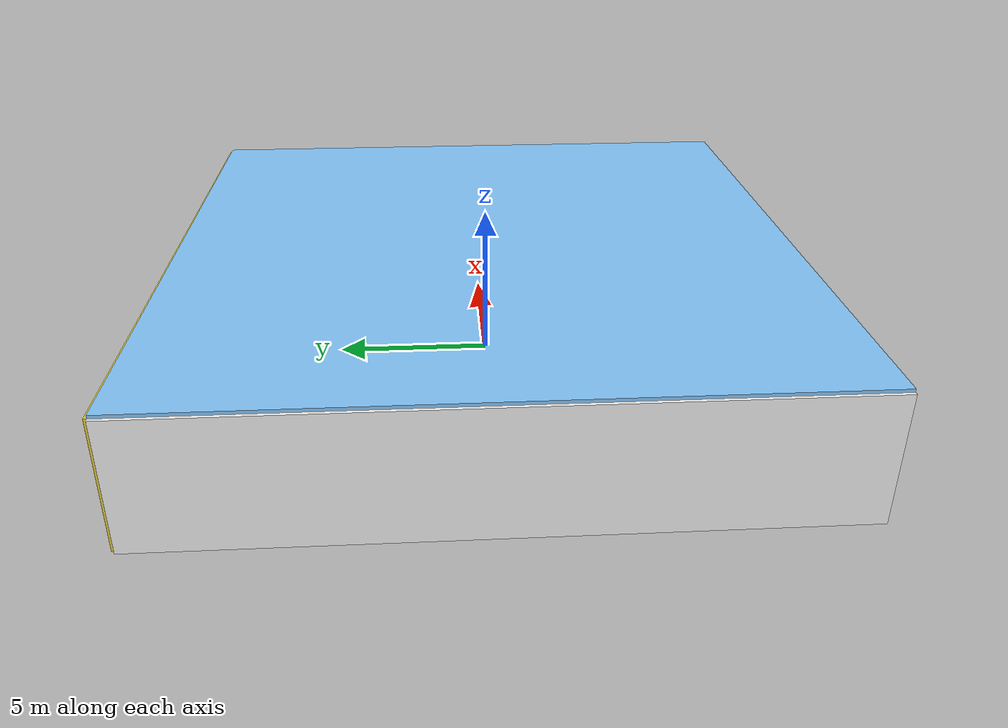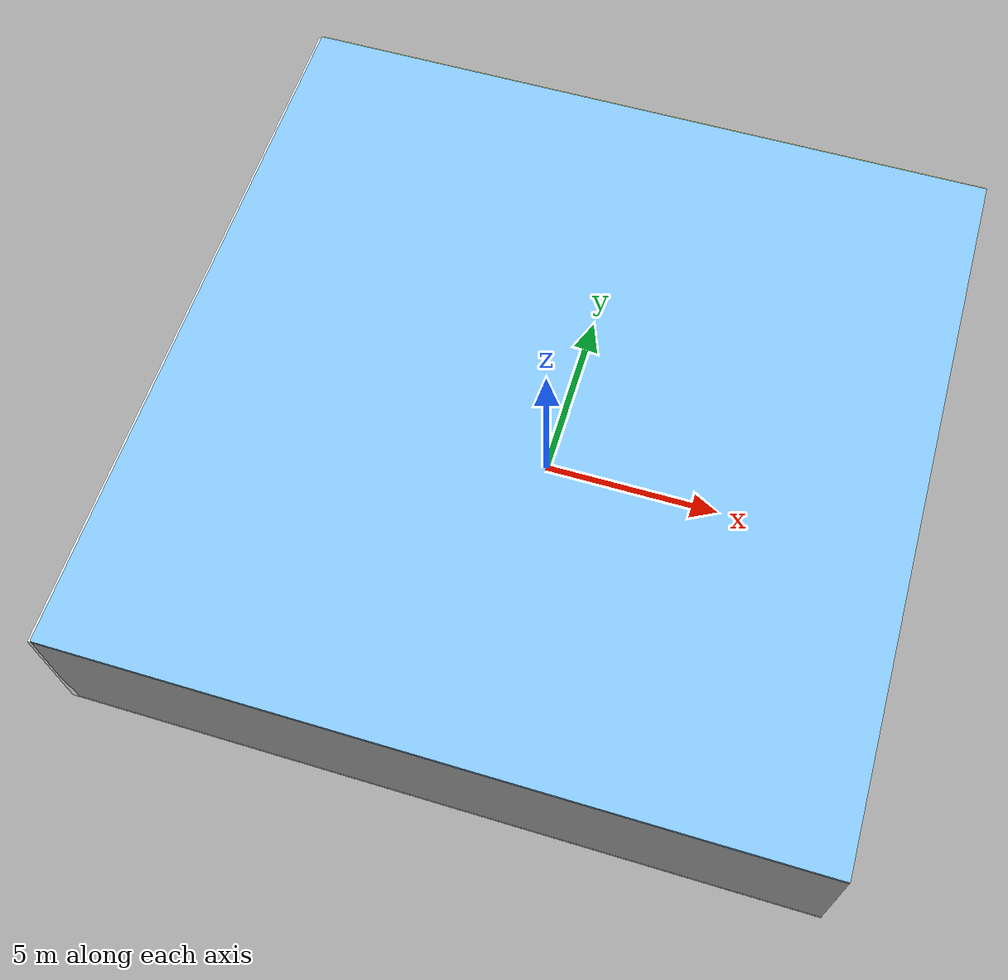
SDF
<sdf version="1.4">
 <world name="default">
  <physics type="ode">
   <max_step_size>0.001</max_step_size>
   <real_time_factor>1</real_time_factor>
   <real_time_update_rate>1000</real_time_update_rate>
   <gravity>0 0 -9.8</gravity>
  </physics>
  <scene><ambient>0.4 0.4 0.4 1</ambient><background>0.7 0.7 0.7 1</background><shadows>1</shadows></scene>
  <model name="Surrounding">
   <static>1</static>
   <link name="Ceiling">
    <collision name="Ceiling_Collision"><geometry><box><size>20 20 0.1</size></box></geometry></collision>
    <visual name="Ceiling_Visual">
     <geometry><box><size>20 20 0.1</size></box></geometry>
     <material>
      <script><uri>file://media/materials/scripts/gazebo.material</uri><name>Gazebo/SkyBlue</name></script>
     </material>
    </visual>
    <pose>0 0 4.05 0 0 0</pose>
   </link>
   <link name="Wall_South">
    <collision name="Wall_South_Collision">
     <geometry><box><size>20 0 4</size></box></geometry>
     <pose>0 0 2 0 -0 0</pose>
    </collision>
    <visual name="Wall_South_Visual">
     <pose>0 0 2 0 -0 0</pose>
     <geometry><box><size>20 0 4</size></box></geometry>
     <material>
      <script><uri>file://media/materials/scripts/gazebo.material</uri><name>Gazebo/GreyGradientSky</name></script>
     </material>
    </visual>
    <velocity_decay><linear>0</linear><angular>0</angular></velocity_decay>
    <pose>0 -10 0 0 -0 0</pose>
   </link>
   <link name="Wall_East">
    <collision name="Wall_21_Collision">
     <geometry><box><size>20 0 4</size></box></geometry>
     <pose>0 0 2 0 -0 0</pose>
    </collision>
    <visual name="Wall_21_Visual">
     <pose>0 0 2 0 -0 0</pose>
     <geometry><box><size>20 0 4</size></box></geometry>
     <material>
      <script><uri>file://media/materials/scripts/gazebo.material</uri><name>Gazebo/Turquoise</name></script>
     </material>
    </visual>
    <velocity_decay><linear>0</linear><angular>0</angular></velocity_decay>
    <pose>10 0 0 0 -0 1.5708</pose>
   </link>
   <link name="Wall_North">
    <collision name="Wall_22_Collision">
     <geometry><box><size>20 0.2 4</size></box></geometry>
     <pose>0 0 2 0 -0 0</pose>
    </collision>
    <visual name="Wall_22_Visual">
     <pose>0 0 2 0 -0 0</pose>
     <geometry><box><size>20 0.2 4</size></box></geometry>
     <material>
      <script><uri>file://media/materials/scripts/gazebo.material</uri><name>Gazebo/ZincYellow</name></script>
     </material>
    </visual>
    <velocity_decay><linear>0</linear><angular>0</angular></velocity_decay>
    <pose>0 10 0 0 -0 0</pose>
   </link>
   <link name="Wall_West">
    <collision name="Wall_23_Collision">
     <geometry><box><size>20 0.2 4</size></box></geometry>
     <pose>0 0 2 0 -0 0</pose>
    </collision>
    <visual name="Wall_23_Visual">
     <pose>0 0 2 0 -0 0</pose>
     <geometry><box><size>20 0.2 4</size></box></geometry>
     <material>
      <script><uri>file://media/materials/scripts/gazebo.material</uri><name>Gazebo/White</name></script>
     </material>
    </visual>
    <velocity_decay><linear>0</linear><angular>0</angular></velocity_decay>
    <pose>-10 0 0 0 0 -1.5708</pose>
   </link>
   <link name="Ground_link">
    <collision name="collision">
     <pose>0 0 .05 0 -0 0</pose>
     <geometry><box><size>20 20 0.1</size></box></geometry>
    </collision>
    <visual name="visual">
     <pose>0 0 .05 0 -0 0</pose>
     <geometry><box><size>20 20 0.1</size></box></geometry>
     <material>
      <script><uri>file://media/materials/scripts/gazebo.material</uri><name>Gazebo/WhiteGlow</name></script>
     </material>
    </visual>
   </link>
   <static>1</static>
  </model>
  <spherical_coordinates>
   <surface_model>EARTH_WGS84</surface_model>
   <latitude_deg>0</latitude_deg>
   <longitude_deg>0</longitude_deg>
   <elevation>0</elevation>
   <heading_deg>0</heading_deg>
  </spherical_coordinates>
  <light name="lightball_0" type="diffuse">
   <diffuse>0.8 0.8 0.8 1</diffuse>
   <specular>0.2 0.2 0.2 1</specular>
   <attenuation>
    <range>100</range>
    <constant>0.7</constant>
    <linear>0.01</linear>
    <quadratic>0.001</quadratic>
   </attenuation>
   <direction>-0.5 0.1 -0.9</direction>
   <pose>-9.69954041691 -9.40473734438 2.57216408465 0 0 0</pose>
  </light>
  <light name="lightball_1" type="diffuse">
   <diffuse>0.8 0.8 0.8 1</diffuse>
   <specular>0.2 0.2 0.2 1</specular>
   <attenuation>
    <range>100</range>
    <constant>0.7</constant>
    <linear>0.01</linear>
    <quadratic>0.001</quadratic>
   </attenuation>
   <direction>-0.5 0.1 -0.9</direction>
   <pose>-0.637278108923 -3.29912465707 2.92275192414 0 0 0</pose>
  </light>
  <light name="lightball_2" type="diffuse">
   <diffuse>0.8 0.8 0.8 1</diffuse>
   <specular>0.2 0.2 0.2 1</specular>
   <attenuation>
    <range>100</range>
    <constant>0.7</constant>
    <linear>0.01</linear>
    <quadratic>0.001</quadratic>
   </attenuation>
   <direction>-0.5 0.1 -0.9</direction>
   <pose>6.89204673585 3.50550910283 1.23272825583 0 0 0</pose>
  </light>
  <light name="lightball_3" type="diffuse">
   <diffuse>0.8 0.8 0.8 1</diffuse>
   <specular>0.2 0.2 0.2 1</specular>
   <attenuation>
    <range>100</range>
    <constant>0.7</constant>
    <linear>0.01</linear>
    <quadratic>0.001</quadratic>
   </attenuation>
   <direction>-0.5 0.1 -0.9</direction>
   <pose>0.329628269876 -5.38820817083 2.19499011131 0 0 0</pose>
  </light>
  <light name="lightball_4" type="diffuse">
   <diffuse>0.8 0.8 0.8 1</diffuse>
   <specular>0.2 0.2 0.2 1</specular>
   <attenuation>
    <range>100</range>
    <constant>0.7</constant>
    <linear>0.01</linear>
    <quadratic>0.001</quadratic>
   </attenuation>
   <direction>-0.5 0.1 -0.9</direction>
   <pose>-8.27404282922 -6.79329278343 1.40824259943 0 0 0</pose>
  </light>
  <light name="lightball_5" type="diffuse">
   <diffuse>0.8 0.8 0.8 1</diffuse>
   <specular>0.2 0.2 0.2 1</specular>
   <attenuation>
    <range>100</range>
    <constant>0.7</constant>
    <linear>0.01</linear>
    <quadratic>0.001</quadratic>
   </attenuation>
   <direction>-0.5 0.1 -0.9</direction>
   <pose>-7.45052728724 5.86446448029 3.39700142755 0 0 0</pose>
  </light>
  <light name="lightball_6" type="diffuse">
   <diffuse>0.8 0.8 0.8 1</diffuse>
   <specular>0.2 0.2 0.2 1</specular>
   <attenuation>
    <range>100</range>
    <constant>0.7</constant>
    <linear>0.01</linear>
    <quadratic>0.001</quadratic>
   </attenuation>
   <direction>-0.5 0.1 -0.9</direction>
   <pose>1.77622080735 -6.68885625601 2.2005071771 0 0 0</pose>
  </light>
  <light name="lightball_7" type="diffuse">
   <diffuse>0.8 0.8 0.8 1</diffuse>
   <specular>0.2 0.2 0.2 1</specular>
   <attenuation>
    <range>100</range>
    <constant>0.7</constant>
    <linear>0.01</linear>
    <quadratic>0.001</quadratic>
   </attenuation>
   <direction>-0.5 0.1 -0.9</direction>
   <pose>-3.45788216455 5.86875371556 2.90244223869 0 0 0</pose>
  </light>
  <include><uri>model://table</uri><pose>-1.16361100236 -4.44438254426 0 0 0 0.942515195819</pose></include>
  <include>
   <uri>model://construction_cone</uri>
   <pose>-1.68535417268 3.62820766003 0 0 0 0.596285513847</pose>
  </include>
 </world>
</sdf>

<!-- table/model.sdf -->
<sdf version="1.5">
  <model name="table">
    <static>true</static>
    <link name="link">
      <collision name="surface">
        <pose>0 0 1.0 0 0 0</pose>
        <geometry>
          <box>
            <size>1.5 0.8 0.03</size>
          </box>
        </geometry>
        <surface>
          <friction>
            <ode>
              <mu>0.6</mu>
              <mu2>0.6</mu2>
            </ode>
          </friction>
        </surface>
      </collision>
      <visual name="visual1">
        <pose>0 0 1.0 0 0 0</pose>
        <geometry>
          <box>
            <size>1.5 0.8 0.03</size>
          </box>
        </geometry>
        <material>
          <script>
            <uri>model://media/materials/scripts/gazebo.material</uri>
            <name>Gazebo/Wood</name>
          </script>
        </material>
      </visual>
      <collision name="front_left_leg">
        <pose>0.68 0.38 0.5 0 0 0</pose>
        <geometry>
          <cylinder>
            <radius>0.02</radius>
            <length>1.0</length>
          </cylinder>
        </geometry>
      </collision>
      <visual name="front_left_leg">
        <pose>0.68 0.38 0.5 0 0 0</pose>
        <geometry>
          <cylinder>
            <radius>0.02</radius>
            <length>1.0</length>
          </cylinder>
        </geometry>
        <material>
          <script>
            <uri>model://media/materials/scripts/gazebo.material</uri>
            <name>Gazebo/Grey</name>
          </script>
        </material>
      </visual>
      <collision name="front_right_leg">
        <pose>0.68 -0.38 0.5 0 0 0</pose>
        <geometry>
          <cylinder>
            <radius>0.02</radius>
            <length>1.0</length>
          </cylinder>
        </geometry>
      </collision>
      <visual name="front_right_leg">
        <pose>0.68 -0.38 0.5 0 0 0</pose>
        <geometry>
          <cylinder>
            <radius>0.02</radius>
            <length>1.0</length>
          </cylinder>
        </geometry>
        <material>
          <script>
            <uri>model://media/materials/scripts/gazebo.material</uri>
            <name>Gazebo/Grey</name>
          </script>
        </material>
      </visual>
      <collision name="back_right_leg">
        <pose>-0.68 -0.38 0.5 0 0 0</pose>
        <geometry>
          <cylinder>
            <radius>0.02</radius>
            <length>1.0</length>
          </cylinder>
        </geometry>
      </collision>
      <visual name="back_right_leg">
        <pose>-0.68 -0.38 0.5 0 0 0</pose>
        <geometry>
          <cylinder>
            <radius>0.02</radius>
            <length>1.0</length>
          </cylinder>
        </geometry>
        <material>
          <script>
            <uri>model://media/materials/scripts/gazebo.material</uri>
            <name>Gazebo/Grey</name>
          </script>
        </material>
      </visual>
      <collision name="back_left_leg">
        <pose>-0.68 0.38 0.5 0 0 0</pose>
        <geometry>
          <cylinder>
            <radius>0.02</radius>
            <length>1.0</length>
          </cylinder>
        </geometry>
      </collision>
      <visual name="back_left_leg">
        <pose>-0.68 0.38 0.5 0 0 0</pose>
        <geometry>
          <cylinder>
            <radius>0.02</radius>
            <length>1.0</length>
          </cylinder>
        </geometry>
        <material>
          <script>
            <uri>model://media/materials/scripts/gazebo.material</uri>
            <name>Gazebo/Grey</name>
          </script>
        </material>
      </visual>
    </link>
  </model>
</sdf>

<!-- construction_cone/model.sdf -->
<sdf version="1.5">
  <model name="Construction Cone">
    <link name="link">
      <collision name="collision">
        <geometry>
          <mesh>
            <scale>10 10 10</scale>
            <uri>file://isr-testbed/construction_cone/meshes/construction_cone.dae</uri>
          </mesh>
        </geometry>
      </collision>
      <visual name="visual">
        <geometry>
          <mesh>
            <scale>10 10 10</scale>
            <uri>file://isr-testbed/construction_cone/meshes/construction_cone.dae</uri>
          </mesh>
        </geometry>
      </visual>
    </link>
  </model>
</sdf>
